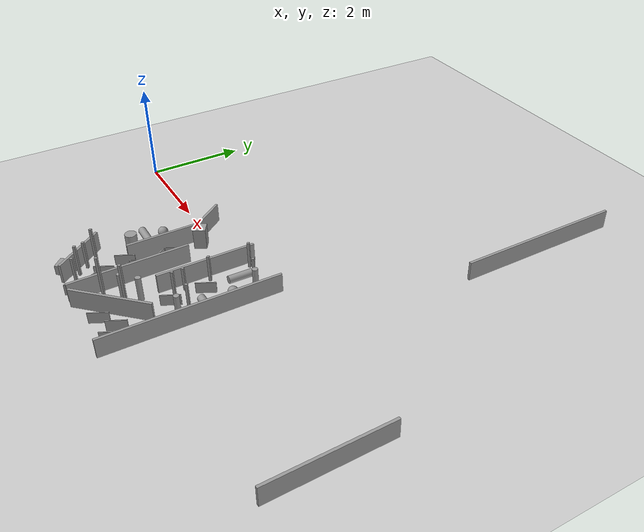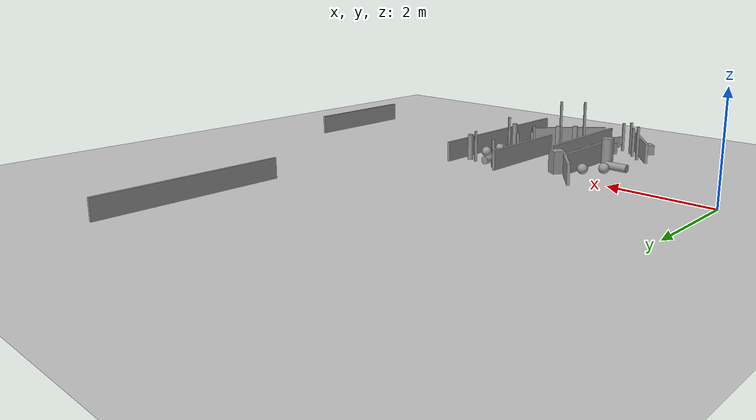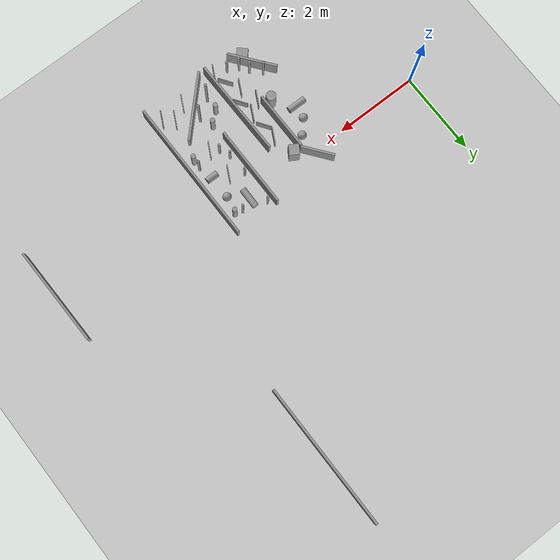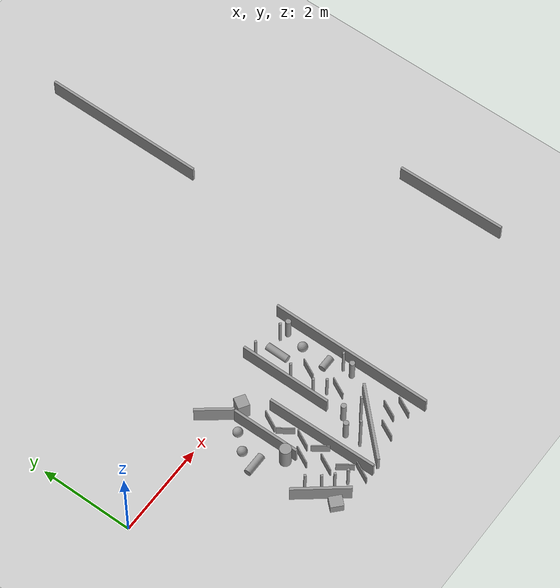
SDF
<sdf version="1.7">
 <world name="default">
  <model name="ground_plane">
   <static>1</static>
   <link name="link">
    <collision name="collision">
     <geometry><plane><normal>0 0 1</normal><size>100 100</size></plane></geometry>
     <surface>
      <contact><collide_bitmask>65535</collide_bitmask></contact>
      <friction><ode><mu>100</mu><mu2>50</mu2></ode></friction>
     </surface>
    </collision>
    <visual name="visual">
     <cast_shadows>0</cast_shadows>
     <geometry><plane><normal>0 0 1</normal><size>100 100</size></plane></geometry>
     <material>
      <script><uri>file://media/materials/scripts/gazebo.material</uri><name>Gazebo/Grey</name></script>
     </material>
    </visual>
   </link>
  </model>
  <model name="unit_box_clone_0_clone">
   <pose>5.31635 -1.2526 0.197473 0.00021 9.2e-05 -1.57074</pose>
   <link name="link">
    <inertial>
     <mass>1</mass>
     <inertia>
      <ixx>0.166667</ixx>
      <ixy>0</ixy>
      <ixz>0</ixz>
      <iyy>0.166667</iyy>
      <iyz>0</iyz>
      <izz>0.166667</izz>
     </inertia>
    </inertial>
    <collision name="collision"><geometry><box><size>3.50364 0.053487 0.395257</size></box></geometry></collision>
    <visual name="visual">
     <geometry><box><size>3.50364 0.053487 0.395257</size></box></geometry>
     <material>
      <script><name>Gazebo/Grey</name><uri>file://media/materials/scripts/gazebo.material</uri></script>
     </material>
    </visual>
   </link>
  </model>
  <model name="unit_box_clone_0_clone_clone">
   <pose>3.6045 -1.80754 0.197525 -2e-06 -8.7e-05 -1.5579</pose>
   <link name="link">
    <inertial>
     <mass>1</mass>
     <inertia>
      <ixx>0.166667</ixx>
      <ixy>0</ixy>
      <ixz>0</ixz>
      <iyy>0.166667</iyy>
      <iyz>0</iyz>
      <izz>0.166667</izz>
     </inertia>
    </inertial>
    <collision name="collision"><geometry><box><size>2.37247 0.053487 0.395257</size></box></geometry></collision>
    <visual name="visual">
     <geometry><box><size>2.37247 0.053487 0.395257</size></box></geometry>
     <material>
      <script><name>Gazebo/Grey</name><uri>file://media/materials/scripts/gazebo.material</uri></script>
     </material>
    </visual>
   </link>
  </model>
  <model name="unit_box_clone_0_clone_clone_0">
   <pose>3.00883 -0.935932 0.197619 0 -1.3e-05 -1.56742</pose>
   <link name="link">
    <inertial>
     <mass>1</mass>
     <inertia>
      <ixx>0.166667</ixx>
      <ixy>0</ixy>
      <ixz>0</ixz>
      <iyy>0.166667</iyy>
      <iyz>0</iyz>
      <izz>0.166667</izz>
     </inertia>
    </inertial>
    <collision name="collision"><geometry><box><size>1.44105 0.053487 0.395257</size></box></geometry></collision>
    <visual name="visual">
     <geometry><box><size>1.44105 0.053487 0.395257</size></box></geometry>
     <material>
      <script><name>Gazebo/Grey</name><uri>file://media/materials/scripts/gazebo.material</uri></script>
     </material>
    </visual>
   </link>
  </model>
  <model name="unit_box_clone_0_clone_clone_1">
   <pose>2.78911 0.112179 0.197628 1e-06 -0 -0.912313</pose>
   <link name="link">
    <inertial>
     <mass>1</mass>
     <inertia>
      <ixx>0.166667</ixx>
      <ixy>0</ixy>
      <ixz>0</ixz>
      <iyy>0.166667</iyy>
      <iyz>0</iyz>
      <izz>0.166667</izz>
     </inertia>
    </inertial>
    <collision name="collision">
     <geometry><box><size>0.781865 0.053487 0.395257</size></box></geometry>
    </collision>
    <visual name="visual">
     <geometry><box><size>0.781865 0.053487 0.395257</size></box></geometry>
     <material>
      <script><name>Gazebo/Grey</name><uri>file://media/materials/scripts/gazebo.material</uri></script>
     </material>
    </visual>
   </link>
  </model>
  <model name="unit_box_clone_0_clone_clone_3">
   <pose>6.81856 5.42163 0.197473 0.00021 -9.2e-05 -1.571</pose>
   <link name="link">
    <inertial>
     <mass>1</mass>
     <inertia>
      <ixx>0.166667</ixx>
      <ixy>0</ixy>
      <ixz>0</ixz>
      <iyy>0.166667</iyy>
      <iyz>0</iyz>
      <izz>0.166667</izz>
     </inertia>
    </inertial>
    <collision name="collision"><geometry><box><size>3.50364 0.053487 0.395257</size></box></geometry></collision>
    <visual name="visual">
     <geometry><box><size>3.50364 0.053487 0.395257</size></box></geometry>
     <material>
      <script><name>Gazebo/Grey</name><uri>file://media/materials/scripts/gazebo.material</uri></script>
     </material>
    </visual>
   </link>
  </model>
  <model name="unit_box_clone_0_clone_clone_clone">
   <pose>4.34729 -2.41444 0.197611 -1e-06 -2.1e-05 -2.35173</pose>
   <link name="link">
    <inertial>
     <mass>1</mass>
     <inertia>
      <ixx>0.166667</ixx>
      <ixy>0</ixy>
      <ixz>0</ixz>
      <iyy>0.166667</iyy>
      <iyz>0</iyz>
      <izz>0.166667</izz>
     </inertia>
    </inertial>
    <collision name="collision"><geometry><box><size>1.63225 0.053487 0.395257</size></box></geometry></collision>
    <visual name="visual">
     <geometry><box><size>1.63225 0.053487 0.395257</size></box></geometry>
     <material>
      <script><name>Gazebo/Grey</name><uri>file://media/materials/scripts/gazebo.material</uri></script>
     </material>
    </visual>
   </link>
  </model>
  <model name="unit_box_clone_0_clone_clone_2_clone_0_clone">
   <pose>2.64848 -2.48151 0.200292 0 9e-06 2.23807</pose>
   <link name="link">
    <inertial>
     <mass>1</mass>
     <inertia>
      <ixx>0.166667</ixx>
      <ixy>0</ixy>
      <ixz>0</ixz>
      <iyy>0.166667</iyy>
      <iyz>0</iyz>
      <izz>0.166667</izz>
     </inertia>
    </inertial>
    <collision name="collision"><geometry><box><size>1.17612 0.053487 0.400593</size></box></geometry></collision>
    <visual name="visual">
     <geometry><box><size>1.17612 0.053487 0.400593</size></box></geometry>
     <material>
      <script><name>Gazebo/Grey</name><uri>file://media/materials/scripts/gazebo.material</uri></script>
     </material>
    </visual>
   </link>
  </model>
  <model name="unit_box_1">
   <pose>3.20971 -0.223291 0.218642 0 -0 1.01757</pose>
   <link name="link">
    <inertial>
     <mass>1</mass>
     <inertia>
      <ixx>0.166667</ixx>
      <ixy>0</ixy>
      <ixz>0</ixz>
      <iyy>0.166667</iyy>
      <iyz>0</iyz>
      <izz>0.166667</izz>
     </inertia>
    </inertial>
    <collision name="collision">
     <geometry><box><size>0.249472 0.238991 0.437285</size></box></geometry>
    </collision>
    <visual name="visual">
     <geometry><box><size>0.249472 0.238991 0.437285</size></box></geometry>
     <material>
      <script><name>Gazebo/Grey</name><uri>file://media/materials/scripts/gazebo.material</uri></script>
     </material>
    </visual>
   </link>
  </model>
  <model name="unit_box_clone_0_clone_clone_2_clone_2">
   <pose>4.20162 -0.517801 0.197586 1e-06 4.3e-05 1.56996</pose>
   <link name="link">
    <inertial>
     <mass>1</mass>
     <inertia>
      <ixx>0.166667</ixx>
      <ixy>0</ixy>
      <ixz>0</ixz>
      <iyy>0.166667</iyy>
      <iyz>0</iyz>
      <izz>0.166667</izz>
     </inertia>
    </inertial>
    <collision name="collision"><geometry><box><size>1.96899 0.053487 0.395257</size></box></geometry></collision>
    <visual name="visual">
     <geometry><box><size>1.96899 0.053487 0.395257</size></box></geometry>
     <material>
      <script><name>Gazebo/Grey</name><uri>file://media/materials/scripts/gazebo.material</uri></script>
     </material>
    </visual>
   </link>
  </model>
  <model name="unit_sphere_clone_2_clone">
   <pose>2.78446 -0.450412 0.103079 0 -0 0</pose>
   <link name="link">
    <inertial>
     <mass>1</mass>
     <inertia><ixx>0.1</ixx><ixy>0</ixy><ixz>0</ixz><iyy>0.1</iyy><iyz>0</iyz><izz>0.1</izz></inertia>
    </inertial>
    <collision name="collision"><geometry><sphere><radius>0.103079</radius></sphere></geometry></collision>
    <visual name="visual">
     <geometry><sphere><radius>0.103079</radius></sphere></geometry>
     <material>
      <script><name>Gazebo/Grey</name><uri>file://media/materials/scripts/gazebo.material</uri></script>
     </material>
    </visual>
   </link>
  </model>
  <model name="unit_sphere_clone_2_clone_0">
   <pose>2.50719 -0.761141 0.103079 0 -0 0</pose>
   <link name="link">
    <inertial>
     <mass>1</mass>
     <inertia><ixx>0.1</ixx><ixy>0</ixy><ixz>0</ixz><iyy>0.1</iyy><iyz>0</iyz><izz>0.1</izz></inertia>
    </inertial>
    <collision name="collision"><geometry><sphere><radius>0.103079</radius></sphere></geometry></collision>
    <visual name="visual">
     <geometry><sphere><radius>0.103079</radius></sphere></geometry>
     <material>
      <script><name>Gazebo/Grey</name><uri>file://media/materials/scripts/gazebo.material</uri></script>
     </material>
    </visual>
   </link>
  </model>
  <model name="unit_box_0_clone_1">
   <pose>2.67652 -2.81492 0.101363 0 -0 0.821416</pose>
   <link name="link">
    <inertial>
     <mass>1</mass>
     <inertia>
      <ixx>0.166667</ixx>
      <ixy>0</ixy>
      <ixz>0</ixz>
      <iyy>0.166667</iyy>
      <iyz>0</iyz>
      <izz>0.166667</izz>
     </inertia>
    </inertial>
    <collision name="collision"><geometry><box><size>0.23422 0.263927 0.202726</size></box></geometry></collision>
    <visual name="visual">
     <geometry><box><size>0.23422 0.263927 0.202726</size></box></geometry>
     <material>
      <script><name>Gazebo/Grey</name><uri>file://media/materials/scripts/gazebo.material</uri></script>
     </material>
    </visual>
   </link>
  </model>
  <model name="unit_cylinder_0">
   <pose>2.43375 -1.103 0.078555 3.14159 1.57079 3.14159</pose>
   <link name="link">
    <inertial>
     <mass>1</mass>
     <inertia><ixx>0.145833</ixx><ixy>0</ixy><ixz>0</ixz><iyy>0.145833</iyy><iyz>0</iyz><izz>0.125</izz></inertia>
    </inertial>
    <collision name="collision">
     <geometry><cylinder><radius>0.0785545</radius><length>0.444943</length></cylinder></geometry>
    </collision>
    <visual name="visual">
     <geometry><cylinder><radius>0.0785545</radius><length>0.444943</length></cylinder></geometry>
     <material>
      <script><name>Gazebo/Grey</name><uri>file://media/materials/scripts/gazebo.material</uri></script>
     </material>
    </visual>
   </link>
  </model>
  <model name="unit_cylinder_clone_5">
   <pose>2.8641 -1.50441 0.259331 4e-06 -0 0.000492</pose>
   <link name="link">
    <inertial>
     <mass>1</mass>
     <inertia><ixx>0.145833</ixx><ixy>0</ixy><ixz>0</ixz><iyy>0.145833</iyy><iyz>0</iyz><izz>0.125</izz></inertia>
    </inertial>
    <collision name="collision">
     <geometry><cylinder><radius>0.116863</radius><length>0.518668</length></cylinder></geometry>
    </collision>
    <visual name="visual">
     <geometry><cylinder><radius>0.116863</radius><length>0.518668</length></cylinder></geometry>
     <material>
      <script><name>Gazebo/Grey</name><uri>file://media/materials/scripts/gazebo.material</uri></script>
     </material>
    </visual>
   </link>
  </model>
  <model name="unit_box_2_clone_0_clone_4_clone">
   <pose>2.56523 -2.1741 0.343631 3.5e-05 -1.9e-05 -0.76789</pose>
   <link name="link">
    <inertial>
     <mass>1</mass>
     <inertia>
      <ixx>0.166667</ixx>
      <ixy>0</ixy>
      <ixz>0</ixz>
      <iyy>0.166667</iyy>
      <iyz>0</iyz>
      <izz>0.166667</izz>
     </inertia>
    </inertial>
    <collision name="collision"><geometry><box><size>0.0489 0.047636 0.687259</size></box></geometry></collision>
    <visual name="visual">
     <geometry><box><size>0.0489 0.047636 0.687259</size></box></geometry>
     <material>
      <script><name>Gazebo/Grey</name><uri>file://media/materials/scripts/gazebo.material</uri></script>
     </material>
    </visual>
   </link>
  </model>
  <model name="unit_box_2_clone_0_clone_4_clone_clone">
   <pose>2.78446 -2.39988 0.296121 0 -1e-06 -0.768658</pose>
   <link name="link">
    <inertial>
     <mass>1</mass>
     <inertia>
      <ixx>0.166667</ixx>
      <ixy>0</ixy>
      <ixz>0</ixz>
      <iyy>0.166667</iyy>
      <iyz>0</iyz>
      <izz>0.166667</izz>
     </inertia>
    </inertial>
    <collision name="collision"><geometry><box><size>0.0489 0.047636 0.59224</size></box></geometry></collision>
    <visual name="visual">
     <geometry><box><size>0.0489 0.047636 0.59224</size></box></geometry>
     <material>
      <script><name>Gazebo/Grey</name><uri>file://media/materials/scripts/gazebo.material</uri></script>
     </material>
    </visual>
   </link>
  </model>
  <model name="unit_box_2_clone_0_clone_4_clone_clone_0">
   <pose>2.93454 -2.59291 0.33328 1e-06 -4.5e-05 -0.763589</pose>
   <link name="link">
    <inertial>
     <mass>1</mass>
     <inertia>
      <ixx>0.166667</ixx>
      <ixy>0</ixy>
      <ixz>0</ixz>
      <iyy>0.166667</iyy>
      <iyz>0</iyz>
      <izz>0.166667</izz>
     </inertia>
    </inertial>
    <collision name="collision"><geometry><box><size>0.0489 0.047636 0.666558</size></box></geometry></collision>
    <visual name="visual">
     <geometry><box><size>0.0489 0.047636 0.666558</size></box></geometry>
     <material>
      <script><name>Gazebo/Grey</name><uri>file://media/materials/scripts/gazebo.material</uri></script>
     </material>
    </visual>
   </link>
  </model>
  <model name="unit_box_2_clone_0_clone_4_clone_clone_1">
   <pose>3.18113 -2.7238 0.297449 -0.000118 -1e-06 -0.767497</pose>
   <link name="link">
    <inertial>
     <mass>1</mass>
     <inertia>
      <ixx>0.166667</ixx>
      <ixy>0</ixy>
      <ixz>0</ixz>
      <iyy>0.166667</iyy>
      <iyz>0</iyz>
      <izz>0.166667</izz>
     </inertia>
    </inertial>
    <collision name="collision"><geometry><box><size>0.0489 0.047636 0.594912</size></box></geometry></collision>
    <visual name="visual">
     <geometry><box><size>0.0489 0.047636 0.594912</size></box></geometry>
     <material>
      <script><name>Gazebo/Grey</name><uri>file://media/materials/scripts/gazebo.material</uri></script>
     </material>
    </visual>
   </link>
  </model>
  <model name="unit_box_clone_0_clone_clone_clone_4">
   <pose>9.31311 -0.788959 0.197525 2e-06 8.7e-05 -1.5581</pose>
   <link name="link">
    <inertial>
     <mass>1</mass>
     <inertia>
      <ixx>0.166667</ixx>
      <ixy>0</ixy>
      <ixz>0</ixz>
      <iyy>0.166667</iyy>
      <iyz>0</iyz>
      <izz>0.166667</izz>
     </inertia>
    </inertial>
    <collision name="collision"><geometry><box><size>2.37247 0.053487 0.395257</size></box></geometry></collision>
    <visual name="visual">
     <geometry><box><size>2.37247 0.053487 0.395257</size></box></geometry>
     <material>
      <script><name>Gazebo/Grey</name><uri>file://media/materials/scripts/gazebo.material</uri></script>
     </material>
    </visual>
   </link>
  </model>
  <model name="unit_box_clone_0_clone_clone_clone_0_clone_3">
   <pose>3.39003 -2.50865 0.111799 -3e-06 -0 -0.964141</pose>
   <link name="link">
    <inertial>
     <mass>1</mass>
     <inertia>
      <ixx>0.166667</ixx>
      <ixy>0</ixy>
      <ixz>0</ixz>
      <iyy>0.166667</iyy>
      <iyz>0</iyz>
      <izz>0.166667</izz>
     </inertia>
    </inertial>
    <collision name="collision"><geometry><box><size>0.362909 0.02047 0.223597</size></box></geometry></collision>
    <visual name="visual">
     <geometry><box><size>0.362909 0.02047 0.223597</size></box></geometry>
     <material>
      <script><name>Gazebo/Grey</name><uri>file://media/materials/scripts/gazebo.material</uri></script>
     </material>
    </visual>
   </link>
  </model>
  <model name="unit_box_clone_0_clone_clone_clone_0_clone_clone_2">
   <pose>3.47873 -2.82748 0.116121 6e-06 0 -2.04269</pose>
   <link name="link">
    <inertial>
     <mass>1</mass>
     <inertia>
      <ixx>0.166667</ixx>
      <ixy>0</ixy>
      <ixz>0</ixz>
      <iyy>0.166667</iyy>
      <iyz>0</iyz>
      <izz>0.166667</izz>
     </inertia>
    </inertial>
    <collision name="collision"><geometry><box><size>0.390599 0.02047 0.232242</size></box></geometry></collision>
    <visual name="visual">
     <geometry><box><size>0.390599 0.02047 0.232242</size></box></geometry>
     <material>
      <script><name>Gazebo/Grey</name><uri>file://media/materials/scripts/gazebo.material</uri></script>
     </material>
    </visual>
   </link>
  </model>
  <model name="unit_box_clone_0_clone_clone_clone_0_clone_clone_2_clone">
   <pose>3.32482 -0.807624 0.116121 0 -0 -2.0427</pose>
   <link name="link">
    <inertial>
     <mass>1</mass>
     <inertia>
      <ixx>0.166667</ixx>
      <ixy>0</ixy>
      <ixz>0</ixz>
      <iyy>0.166667</iyy>
      <iyz>0</iyz>
      <izz>0.166667</izz>
     </inertia>
    </inertial>
    <collision name="collision"><geometry><box><size>0.390599 0.02047 0.232242</size></box></geometry></collision>
    <visual name="visual">
     <geometry><box><size>0.390599 0.02047 0.232242</size></box></geometry>
     <material>
      <script><name>Gazebo/Grey</name><uri>file://media/materials/scripts/gazebo.material</uri></script>
     </material>
    </visual>
   </link>
  </model>
  <model name="unit_box_clone_0_clone_clone_clone_0_clone_clone_2_clone_0">
   <pose>3.36586 -1.53788 0.116121 2.3e-05 -0 -2.0427</pose>
   <link name="link">
    <inertial>
     <mass>1</mass>
     <inertia>
      <ixx>0.166667</ixx>
      <ixy>0</ixy>
      <ixz>0</ixz>
      <iyy>0.166667</iyy>
      <iyz>0</iyz>
      <izz>0.166667</izz>
     </inertia>
    </inertial>
    <collision name="collision"><geometry><box><size>0.390599 0.02047 0.232242</size></box></geometry></collision>
    <visual name="visual">
     <geometry><box><size>0.390599 0.02047 0.232242</size></box></geometry>
     <material>
      <script><name>Gazebo/Grey</name><uri>file://media/materials/scripts/gazebo.material</uri></script>
     </material>
    </visual>
   </link>
  </model>
  <model name="unit_box_clone_0_clone_clone_clone_0_clone_clone_2_clone_1">
   <pose>3.0709 -1.73798 0.11612 0 -5e-06 -2.0427</pose>
   <link name="link">
    <inertial>
     <mass>1</mass>
     <inertia>
      <ixx>0.166667</ixx>
      <ixy>0</ixy>
      <ixz>0</ixz>
      <iyy>0.166667</iyy>
      <iyz>0</iyz>
      <izz>0.166667</izz>
     </inertia>
    </inertial>
    <collision name="collision"><geometry><box><size>0.390599 0.02047 0.232242</size></box></geometry></collision>
    <visual name="visual">
     <geometry><box><size>0.390599 0.02047 0.232242</size></box></geometry>
     <material>
      <script><name>Gazebo/Grey</name><uri>file://media/materials/scripts/gazebo.material</uri></script>
     </material>
    </visual>
   </link>
  </model>
  <model name="unit_box_clone_0_clone_clone_clone_0_clone_clone_2_clone_2">
   <pose>3.21272 -2.19219 0.116121 -4e-06 -0 -2.0429</pose>
   <link name="link">
    <inertial>
     <mass>1</mass>
     <inertia>
      <ixx>0.166667</ixx>
      <ixy>0</ixy>
      <ixz>0</ixz>
      <iyy>0.166667</iyy>
      <iyz>0</iyz>
      <izz>0.166667</izz>
     </inertia>
    </inertial>
    <collision name="collision"><geometry><box><size>0.390599 0.02047 0.232242</size></box></geometry></collision>
    <visual name="visual">
     <geometry><box><size>0.390599 0.02047 0.232242</size></box></geometry>
     <material>
      <script><name>Gazebo/Grey</name><uri>file://media/materials/scripts/gazebo.material</uri></script>
     </material>
    </visual>
   </link>
  </model>
  <model name="unit_box_clone_0_clone_clone_clone_0_clone_3_clone">
   <pose>3.42984 -1.90776 0.111799 1e-06 -0 -0.964142</pose>
   <link name="link">
    <inertial>
     <mass>1</mass>
     <inertia>
      <ixx>0.166667</ixx>
      <ixy>0</ixy>
      <ixz>0</ixz>
      <iyy>0.166667</iyy>
      <iyz>0</iyz>
      <izz>0.166667</izz>
     </inertia>
    </inertial>
    <collision name="collision"><geometry><box><size>0.362909 0.02047 0.223597</size></box></geometry></collision>
    <visual name="visual">
     <geometry><box><size>0.362909 0.02047 0.223597</size></box></geometry>
     <material>
      <script><name>Gazebo/Grey</name><uri>file://media/materials/scripts/gazebo.material</uri></script>
     </material>
    </visual>
   </link>
  </model>
  <model name="unit_box_clone_0_clone_clone_clone_0_clone_3_clone_2">
   <pose>3.33767 -1.15504 0.111799 2e-06 0 -0.964142</pose>
   <link name="link">
    <inertial>
     <mass>1</mass>
     <inertia>
      <ixx>0.166667</ixx>
      <ixy>0</ixy>
      <ixz>0</ixz>
      <iyy>0.166667</iyy>
      <iyz>0</iyz>
      <izz>0.166667</izz>
     </inertia>
    </inertial>
    <collision name="collision"><geometry><box><size>0.362909 0.02047 0.223597</size></box></geometry></collision>
    <visual name="visual">
     <geometry><box><size>0.362909 0.02047 0.223597</size></box></geometry>
     <material>
      <script><name>Gazebo/Grey</name><uri>file://media/materials/scripts/gazebo.material</uri></script>
     </material>
    </visual>
   </link>
  </model>
  <model name="unit_cylinder_0_clone_0_clone">
   <pose>4.61765 -0.028017 0.078555 1.5708 1.57079 3.12608</pose>
   <link name="link">
    <inertial>
     <mass>1</mass>
     <inertia><ixx>0.145833</ixx><ixy>0</ixy><ixz>0</ixz><iyy>0.145833</iyy><iyz>0</iyz><izz>0.125</izz></inertia>
    </inertial>
    <collision name="collision">
     <geometry><cylinder><radius>0.0785548</radius><length>0.480558</length></cylinder></geometry>
    </collision>
    <visual name="visual">
     <geometry><cylinder><radius>0.0785548</radius><length>0.480558</length></cylinder></geometry>
     <material>
      <script><name>Gazebo/Grey</name><uri>file://media/materials/scripts/gazebo.material</uri></script>
     </material>
    </visual>
   </link>
  </model>
  <model name="unit_sphere_clone_2_clone_5_clone">
   <pose>4.99734 -0.344963 0.103079 0 -0 0</pose>
   <link name="link">
    <inertial>
     <mass>1</mass>
     <inertia><ixx>0.1</ixx><ixy>0</ixy><ixz>0</ixz><iyy>0.1</iyy><iyz>0</iyz><izz>0.1</izz></inertia>
    </inertial>
    <collision name="collision"><geometry><sphere><radius>0.103079</radius></sphere></geometry></collision>
    <visual name="visual">
     <geometry><sphere><radius>0.103079</radius></sphere></geometry>
     <material>
      <script><name>Gazebo/Grey</name><uri>file://media/materials/scripts/gazebo.material</uri></script>
     </material>
    </visual>
   </link>
  </model>
  <model name="unit_box_clone_0_clone_clone_clone_0_clone_clone_2_clone_0_clone">
   <pose>4.6568 -0.734692 0.116121 0 0 -2.04256</pose>
   <link name="link">
    <inertial>
     <mass>1</mass>
     <inertia>
      <ixx>0.166667</ixx>
      <ixy>0</ixy>
      <ixz>0</ixz>
      <iyy>0.166667</iyy>
      <iyz>0</iyz>
      <izz>0.166667</izz>
     </inertia>
    </inertial>
    <collision name="collision"><geometry><box><size>0.390599 0.02047 0.232242</size></box></geometry></collision>
    <visual name="visual">
     <geometry><box><size>0.390599 0.02047 0.232242</size></box></geometry>
     <material>
      <script><name>Gazebo/Grey</name><uri>file://media/materials/scripts/gazebo.material</uri></script>
     </material>
    </visual>
   </link>
  </model>
  <model name="unit_box_clone_0_clone_clone_clone_0_clone_clone_2_clone_0_clone_0">
   <pose>4.66311 -1.42602 0.116121 1e-06 0 -2.0427</pose>
   <link name="link">
    <inertial>
     <mass>1</mass>
     <inertia>
      <ixx>0.166667</ixx>
      <ixy>0</ixy>
      <ixz>0</ixz>
      <iyy>0.166667</iyy>
      <iyz>0</iyz>
      <izz>0.166667</izz>
     </inertia>
    </inertial>
    <collision name="collision"><geometry><box><size>0.390599 0.02047 0.232242</size></box></geometry></collision>
    <visual name="visual">
     <geometry><box><size>0.390599 0.02047 0.232242</size></box></geometry>
     <material>
      <script><name>Gazebo/Grey</name><uri>file://media/materials/scripts/gazebo.material</uri></script>
     </material>
    </visual>
   </link>
  </model>
  <model name="unit_box_clone_0_clone_clone_clone_0_clone_clone_2_clone_0_clone_1">
   <pose>4.84004 -2.48176 0.116121 -0 -0 -2.0427</pose>
   <link name="link">
    <inertial>
     <mass>1</mass>
     <inertia>
      <ixx>0.166667</ixx>
      <ixy>0</ixy>
      <ixz>0</ixz>
      <iyy>0.166667</iyy>
      <iyz>0</iyz>
      <izz>0.166667</izz>
     </inertia>
    </inertial>
    <collision name="collision"><geometry><box><size>0.390599 0.02047 0.232242</size></box></geometry></collision>
    <visual name="visual">
     <geometry><box><size>0.390599 0.02047 0.232242</size></box></geometry>
     <material>
      <script><name>Gazebo/Grey</name><uri>file://media/materials/scripts/gazebo.material</uri></script>
     </material>
    </visual>
   </link>
  </model>
  <model name="unit_box_clone_0_clone_clone_clone_0_clone_clone_2_clone_0_clone_2">
   <pose>4.47975 -2.6921 0.116121 3e-06 0 -2.04267</pose>
   <link name="link">
    <inertial>
     <mass>1</mass>
     <inertia>
      <ixx>0.166667</ixx>
      <ixy>0</ixy>
      <ixz>0</ixz>
      <iyy>0.166667</iyy>
      <iyz>0</iyz>
      <izz>0.166667</izz>
     </inertia>
    </inertial>
    <collision name="collision"><geometry><box><size>0.390599 0.02047 0.232242</size></box></geometry></collision>
    <visual name="visual">
     <geometry><box><size>0.390599 0.02047 0.232242</size></box></geometry>
     <material>
      <script><name>Gazebo/Grey</name><uri>file://media/materials/scripts/gazebo.material</uri></script>
     </material>
    </visual>
   </link>
  </model>
  <model name="unit_box_clone_0_clone_clone_clone_0_clone_clone_2_clone_0_clone_3">
   <pose>5.07439 -2.66762 0.116121 -1e-06 -0 -2.04269</pose>
   <link name="link">
    <inertial>
     <mass>1</mass>
     <inertia>
      <ixx>0.166667</ixx>
      <ixy>0</ixy>
      <ixz>0</ixz>
      <iyy>0.166667</iyy>
      <iyz>0</iyz>
      <izz>0.166667</izz>
     </inertia>
    </inertial>
    <collision name="collision"><geometry><box><size>0.390599 0.02047 0.232242</size></box></geometry></collision>
    <visual name="visual">
     <geometry><box><size>0.390599 0.02047 0.232242</size></box></geometry>
     <material>
      <script><name>Gazebo/Grey</name><uri>file://media/materials/scripts/gazebo.material</uri></script>
     </material>
    </visual>
   </link>
  </model>
  <model name="unit_cylinder_0_clone_2_clone">
   <pose>4.98482 -0.914013 0.078555 3.14159 1.57079 3.14159</pose>
   <link name="link">
    <inertial>
     <mass>1</mass>
     <inertia><ixx>0.145833</ixx><ixy>0</ixy><ixz>0</ixz><iyy>0.145833</iyy><iyz>0</iyz><izz>0.125</izz></inertia>
    </inertial>
    <collision name="collision">
     <geometry><cylinder><radius>0.0785548</radius><length>0.289117</length></cylinder></geometry>
    </collision>
    <visual name="visual">
     <geometry><cylinder><radius>0.0785548</radius><length>0.289117</length></cylinder></geometry>
     <material>
      <script><name>Gazebo/Grey</name><uri>file://media/materials/scripts/gazebo.material</uri></script>
     </material>
    </visual>
   </link>
  </model>
  <model name="unit_cylinder_clone_4_clone">
   <pose>4.24992 -1.84462 0.259329 0 -0 0.000649</pose>
   <link name="link">
    <inertial>
     <mass>1</mass>
     <inertia><ixx>0.145833</ixx><ixy>0</ixy><ixz>0</ixz><iyy>0.145833</iyy><iyz>0</iyz><izz>0.125</izz></inertia>
    </inertial>
    <collision name="collision">
     <geometry><cylinder><radius>0.0555866</radius><length>0.518668</length></cylinder></geometry>
    </collision>
    <visual name="visual">
     <geometry><cylinder><radius>0.0555866</radius><length>0.518668</length></cylinder></geometry>
     <material>
      <script><name>Gazebo/Grey</name><uri>file://media/materials/scripts/gazebo.material</uri></script>
     </material>
    </visual>
   </link>
  </model>
  <model name="unit_cylinder_clone_4_clone_0">
   <pose>3.98075 -2.0931 0.259329 0 -0 0.000649</pose>
   <link name="link">
    <inertial>
     <mass>1</mass>
     <inertia><ixx>0.145833</ixx><ixy>0</ixy><ixz>0</ixz><iyy>0.145833</iyy><iyz>0</iyz><izz>0.125</izz></inertia>
    </inertial>
    <collision name="collision">
     <geometry><cylinder><radius>0.0555866</radius><length>0.518668</length></cylinder></geometry>
    </collision>
    <visual name="visual">
     <geometry><cylinder><radius>0.0555866</radius><length>0.518668</length></cylinder></geometry>
     <material>
      <script><name>Gazebo/Grey</name><uri>file://media/materials/scripts/gazebo.material</uri></script>
     </material>
    </visual>
   </link>
  </model>
  <model name="unit_cylinder_clone_4_clone_1">
   <pose>5.0869 -1.44083 0.259329 0 -0 0.000649</pose>
   <link name="link">
    <inertial>
     <mass>1</mass>
     <inertia><ixx>0.145833</ixx><ixy>0</ixy><ixz>0</ixz><iyy>0.145833</iyy><iyz>0</iyz><izz>0.125</izz></inertia>
    </inertial>
    <collision name="collision">
     <geometry><cylinder><radius>0.0555866</radius><length>0.518668</length></cylinder></geometry>
    </collision>
    <visual name="visual">
     <geometry><cylinder><radius>0.0555866</radius><length>0.518668</length></cylinder></geometry>
     <material>
      <script><name>Gazebo/Grey</name><uri>file://media/materials/scripts/gazebo.material</uri></script>
     </material>
    </visual>
   </link>
  </model>
  <model name="unit_cylinder_clone_4_clone_2">
   <pose>5.09337 0.073859 0.259329 0 -0 0.000649</pose>
   <link name="link">
    <inertial>
     <mass>1</mass>
     <inertia><ixx>0.145833</ixx><ixy>0</ixy><ixz>0</ixz><iyy>0.145833</iyy><iyz>0</iyz><izz>0.125</izz></inertia>
    </inertial>
    <collision name="collision">
     <geometry><cylinder><radius>0.0555866</radius><length>0.518668</length></cylinder></geometry>
    </collision>
    <visual name="visual">
     <geometry><cylinder><radius>0.0555866</radius><length>0.518668</length></cylinder></geometry>
     <material>
      <script><name>Gazebo/Grey</name><uri>file://media/materials/scripts/gazebo.material</uri></script>
     </material>
    </visual>
   </link>
  </model>
  <model name="unit_box_2_clone_0_clone_3_clone">
   <pose>4.35907 -0.527705 0.280493 1.7e-05 -3e-06 -0.768701</pose>
   <link name="link">
    <inertial>
     <mass>1</mass>
     <inertia>
      <ixx>0.166667</ixx>
      <ixy>0</ixy>
      <ixz>0</ixz>
      <iyy>0.166667</iyy>
      <iyz>0</iyz>
      <izz>0.166667</izz>
     </inertia>
    </inertial>
    <collision name="collision"><geometry><box><size>0.0489 0.047636 0.560986</size></box></geometry></collision>
    <visual name="visual">
     <geometry><box><size>0.0489 0.047636 0.560986</size></box></geometry>
     <material>
      <script><name>Gazebo/Grey</name><uri>file://media/materials/scripts/gazebo.material</uri></script>
     </material>
    </visual>
   </link>
  </model>
  <model name="unit_box_2_clone_0_clone_3_clone_0">
   <pose>4.37645 -1.04341 0.251263 -2e-06 5e-06 -0.768521</pose>
   <link name="link">
    <inertial>
     <mass>1</mass>
     <inertia>
      <ixx>0.166667</ixx>
      <ixy>0</ixy>
      <ixz>0</ixz>
      <iyy>0.166667</iyy>
      <iyz>0</iyz>
      <izz>0.166667</izz>
     </inertia>
    </inertial>
    <collision name="collision"><geometry><box><size>0.0489 0.047636 0.502525</size></box></geometry></collision>
    <visual name="visual">
     <geometry><box><size>0.0489 0.047636 0.502525</size></box></geometry>
     <material>
      <script><name>Gazebo/Grey</name><uri>file://media/materials/scripts/gazebo.material</uri></script>
     </material>
    </visual>
   </link>
  </model>
  <model name="unit_box_2_clone_0_clone_3_clone_1">
   <pose>5.09041 -1.23482 0.344942 -1e-06 -7.4e-05 -0.765181</pose>
   <link name="link">
    <inertial>
     <mass>1</mass>
     <inertia>
      <ixx>0.166667</ixx>
      <ixy>0</ixy>
      <ixz>0</ixz>
      <iyy>0.166667</iyy>
      <iyz>0</iyz>
      <izz>0.166667</izz>
     </inertia>
    </inertial>
    <collision name="collision"><geometry><box><size>0.0489 0.047636 0.689879</size></box></geometry></collision>
    <visual name="visual">
     <geometry><box><size>0.0489 0.047636 0.689879</size></box></geometry>
     <material>
      <script><name>Gazebo/Grey</name><uri>file://media/materials/scripts/gazebo.material</uri></script>
     </material>
    </visual>
   </link>
  </model>
  <model name="unit_box_2_clone_0_clone_3_clone_2">
   <pose>4.48857 -1.28459 0.290815 -2.5e-05 1e-06 -0.764408</pose>
   <link name="link">
    <inertial>
     <mass>1</mass>
     <inertia>
      <ixx>0.166667</ixx>
      <ixy>0</ixy>
      <ixz>0</ixz>
      <iyy>0.166667</iyy>
      <iyz>0</iyz>
      <izz>0.166667</izz>
     </inertia>
    </inertial>
    <collision name="collision"><geometry><box><size>0.0489 0.047636 0.581629</size></box></geometry></collision>
    <visual name="visual">
     <geometry><box><size>0.0489 0.047636 0.581629</size></box></geometry>
     <material>
      <script><name>Gazebo/Grey</name><uri>file://media/materials/scripts/gazebo.material</uri></script>
     </material>
    </visual>
   </link>
  </model>
  <model name="unit_box_2_clone_0_clone_3_clone_3">
   <pose>4.91328 0.129605 0.310388 -2e-06 1.1e-05 -0.76913</pose>
   <link name="link">
    <inertial>
     <mass>1</mass>
     <inertia>
      <ixx>0.166667</ixx>
      <ixy>0</ixy>
      <ixz>0</ixz>
      <iyy>0.166667</iyy>
      <iyz>0</iyz>
      <izz>0.166667</izz>
     </inertia>
    </inertial>
    <collision name="collision"><geometry><box><size>0.0489 0.047636 0.620776</size></box></geometry></collision>
    <visual name="visual">
     <geometry><box><size>0.0489 0.047636 0.620776</size></box></geometry>
     <material>
      <script><name>Gazebo/Grey</name><uri>file://media/materials/scripts/gazebo.material</uri></script>
     </material>
    </visual>
   </link>
  </model>
  <model name="unit_box_2_clone_0_clone_3_clone_4">
   <pose>4.34864 0.297018 0.282311 3e-06 -1e-06 -0.768858</pose>
   <link name="link">
    <inertial>
     <mass>1</mass>
     <inertia>
      <ixx>0.166667</ixx>
      <ixy>0</ixy>
      <ixz>0</ixz>
      <iyy>0.166667</iyy>
      <iyz>0</iyz>
      <izz>0.166667</izz>
     </inertia>
    </inertial>
    <collision name="collision"><geometry><box><size>0.0489 0.047636 0.564622</size></box></geometry></collision>
    <visual name="visual">
     <geometry><box><size>0.0489 0.047636 0.564622</size></box></geometry>
     <material>
      <script><name>Gazebo/Grey</name><uri>file://media/materials/scripts/gazebo.material</uri></script>
     </material>
    </visual>
   </link>
  </model>
  <model name="unit_box_2_clone_0_clone_3_clone_5">
   <pose>4.38104 -2.15269 0.5 2e-06 -8e-06 -0.766695</pose>
   <link name="link">
    <inertial>
     <mass>1</mass>
     <inertia>
      <ixx>0.166667</ixx>
      <ixy>0</ixy>
      <ixz>0</ixz>
      <iyy>0.166667</iyy>
      <iyz>0</iyz>
      <izz>0.166667</izz>
     </inertia>
    </inertial>
    <collision name="collision"><geometry><box><size>0.0489 0.047636 1</size></box></geometry></collision>
    <visual name="visual">
     <geometry><box><size>0.0489 0.047636 1</size></box></geometry>
     <material>
      <script><name>Gazebo/Grey</name><uri>file://media/materials/scripts/gazebo.material</uri></script>
     </material>
    </visual>
   </link>
  </model>
  <model name="unit_box_2_clone_0_clone_3_clone_6">
   <pose>3.9686 -2.43346 0.5 5e-06 -8e-06 -0.766687</pose>
   <link name="link">
    <inertial>
     <mass>1</mass>
     <inertia>
      <ixx>0.166667</ixx>
      <ixy>0</ixy>
      <ixz>0</ixz>
      <iyy>0.166667</iyy>
      <iyz>0</iyz>
      <izz>0.166667</izz>
     </inertia>
    </inertial>
    <collision name="collision"><geometry><box><size>0.0489 0.047636 1</size></box></geometry></collision>
    <visual name="visual">
     <geometry><box><size>0.0489 0.047636 1</size></box></geometry>
     <material>
      <script><name>Gazebo/Grey</name><uri>file://media/materials/scripts/gazebo.material</uri></script>
     </material>
    </visual>
   </link>
  </model>
 </world>
</sdf>
